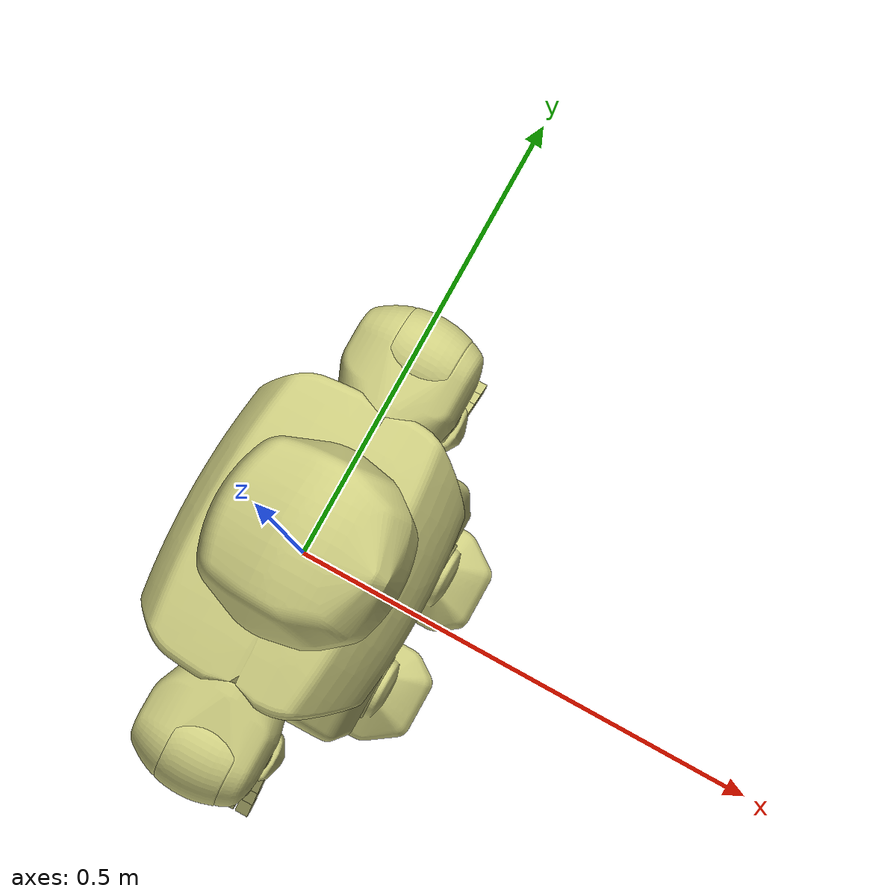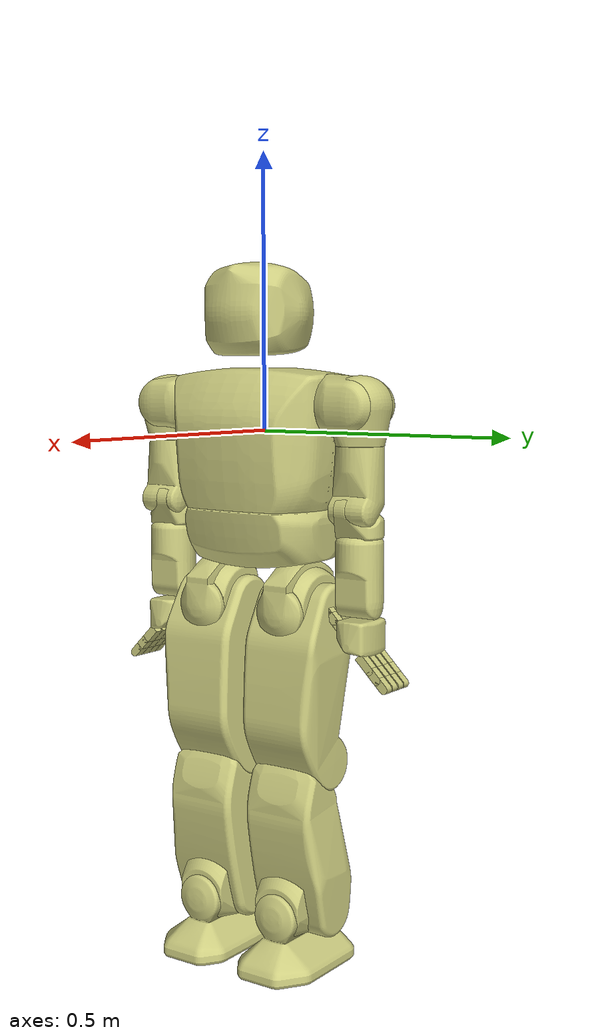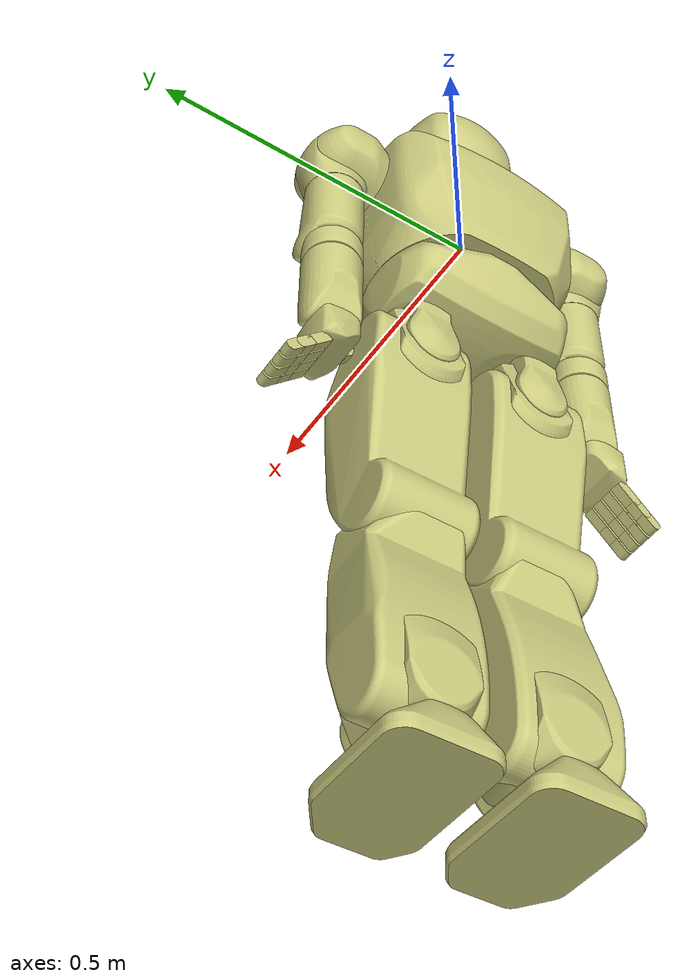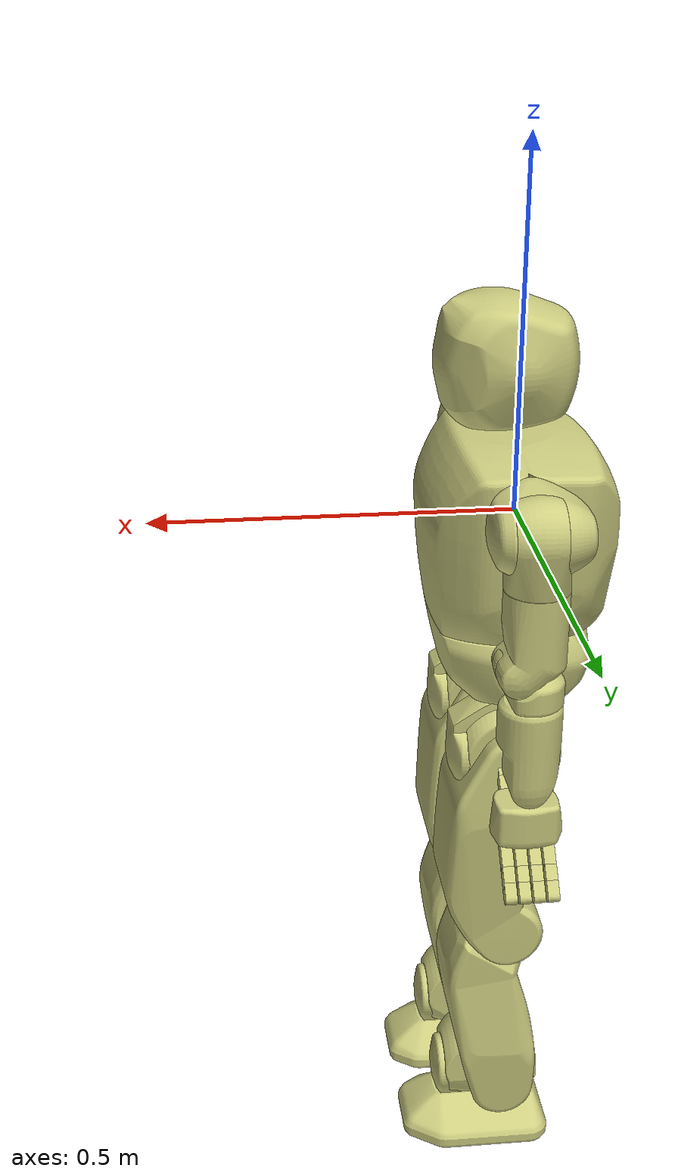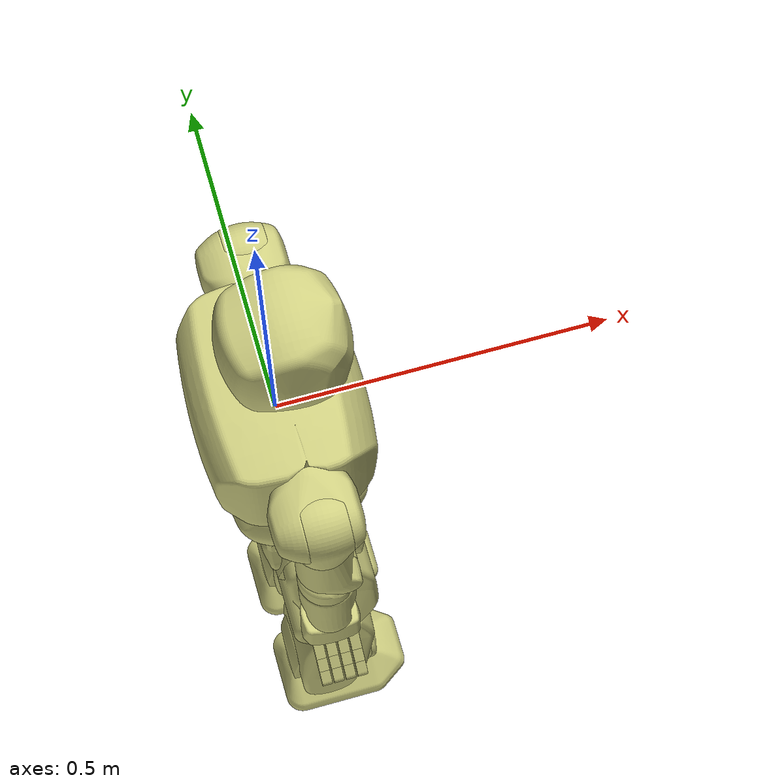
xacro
<?xml version="1.0"?>
<robot name="huboplus" xmlns:xacro="http://www.ros.org/wiki/xacro">
<xacro:property name="path" value="package://wpi_drc_sim/descriptions/huboplus/dae/" />
<xacro:property name="effort" value="10.0" />
<xacro:property name="lower" value="-3.14" />
<xacro:property name="upper" value="3.14" />
<xacro:property name="velocity" value="1.0" />
<link name="Body_Torso">
<inertial>
<mass value="7.50334" />
<inertia ixx="0.102019" ixy="2.45462e-05" ixz="0.00713022" iyy="0.0832724" iyz="-0.00131733" izz="0.086493" />
<origin xyz="0 0 0" />
</inertial>
<visual>
<geometry>
<mesh filename="${path}Body_Torso_vis.dae"/>
</geometry>
<material name="random">
<color rgba="0.800000 0.800000 0.500000 1"/>
</material>
</visual>
<collision>
<geometry>
<mesh filename="${path}Body_Torso_col.dae"/>
</geometry>
</collision>
</link>
<link name="Body_HNR">
</link>
<link name="Body_HNP">
<inertial>
<mass value="0.374251" />
<inertia ixx="0.00164033" ixy="-1.08171e-07" ixz="-9.53978e-05" iyy="0.00153943" iyz="1.25376e-06" izz="0.00190393" />
<origin xyz="0.0106886 -3.00864e-05 0.032123" />
</inertial>
<visual>
<geometry>
<mesh filename="${path}Body_HNP_vis.dae"/>
</geometry>
<material name="random">
<color rgba="0.800000 0.800000 0.500000 1"/>
</material>
</visual>
<collision>
<geometry>
<mesh filename="${path}Body_HNP_col.dae"/>
</geometry>
</collision>
</link>
<link name="Body_LSP">
<inertial>
<mass value="0.646655" />
<inertia ixx="0.000893731" ixy="-0.000156484" ixz="4.98007e-07" iyy="0.00093016" iyz="1.57095e-07" izz="0.00124323" />
<origin xyz="0.0167207 0.0570407 9.91873e-06" />
</inertial>
<visual>
<geometry>
<mesh filename="${path}Body_LSP_vis.dae"/>
</geometry>
<material name="random">
<color rgba="0.800000 0.800000 0.500000 1"/>
</material>
</visual>
<collision>
<geometry>
<mesh filename="${path}Body_LSP_col.dae"/>
</geometry>
</collision>
</link>
<link name="Body_LSR">
<inertial>
<mass value="0.413368" />
<inertia ixx="0.000269283" ixy="4.52571e-07" ixz="3.23662e-06" iyy="0.00037679" iyz="9.93935e-07" izz="0.000360355" />
<origin xyz="-0.036208 -8.31243e-05 -0.00126685" />
</inertial>
<visual>
<geometry>
<mesh filename="${path}Body_LSR_vis.dae"/>
</geometry>
<material name="random">
<color rgba="0.800000 0.800000 0.500000 1"/>
</material>
</visual>
<collision>
<geometry>
<mesh filename="${path}Body_LSR_col.dae"/>
</geometry>
</collision>
</link>
<link name="Body_LSY">
<inertial>
<mass value="1.15461" />
<inertia ixx="0.00365479" ixy="2.05436e-06" ixz="0.000418448" iyy="0.00364731" iyz="-3.09648e-05" izz="0.00060633" />
<origin xyz="0.00456121 3.10576e-05 -0.0907824" />
</inertial>
<visual>
<geometry>
<mesh filename="${path}Body_LSY_vis.dae"/>
</geometry>
<material name="random">
<color rgba="0.800000 0.800000 0.500000 1"/>
</material>
</visual>
<collision>
<geometry>
<mesh filename="${path}Body_LSY_col.dae"/>
</geometry>
</collision>
</link>
<link name="Body_LEP">
<inertial>
<mass value="0.44094" />
<inertia ixx="0.0005027" ixy="3.64587e-06" ixz="-1.41388e-05" iyy="0.00049415" iyz="7.65528e-06" izz="0.000131786" />
<origin xyz="-0.0217349 0.0178314 -0.0610873" />
</inertial>
<visual>
<geometry>
<mesh filename="${path}Body_LEP_vis.dae"/>
</geometry>
<material name="random">
<color rgba="0.800000 0.800000 0.500000 1"/>
</material>
</visual>
<collision>
<geometry>
<mesh filename="${path}Body_LEP_col.dae"/>
</geometry>
</collision>
</link>
<link name="Body_LWY">
<inertial>
<mass value="0.537738" />
<inertia ixx="0.00063457" ixy="-4.62486e-07" ixz="6.20682e-06" iyy="0.000563918" iyz="3.54044e-05" izz="0.000305422" />
<origin xyz="-0.00122019 0.000635233 -0.0238043" />
</inertial>
<visual>
<geometry>
<mesh filename="${path}Body_LWY_vis.dae"/>
</geometry>
<material name="random">
<color rgba="0.800000 0.800000 0.500000 1"/>
</material>
</visual>
<collision>
<geometry>
<mesh filename="${path}Body_LWY_col.dae"/>
</geometry>
</collision>
</link>
<link name="Body_LWP">
<inertial>
<mass value="0.164393" />
<inertia ixx="9.74327e-05" ixy="-5.22155e-07" ixz="-1.17317e-06" iyy="0.000144494" iyz="9.4927e-06" izz="0.000122681" />
<origin xyz="-0.000258199 0.011442 -0.0461472" />
</inertial>
<visual>
<geometry>
<mesh filename="${path}Body_LWP_vis.dae"/>
</geometry>
<material name="random">
<color rgba="0.800000 0.800000 0.500000 1"/>
</material>
</visual>
<collision>
<geometry>
<mesh filename="${path}Body_LWP_col.dae"/>
</geometry>
</collision>
</link>
<link name="leftThumbProximal">
<inertial>
<mass value="0.096" />
<inertia ixx="2.304e-06" ixy="0" ixz="0" iyy="8.96e-06" iyz="6.85949e-15" izz="9.216e-06" />
<origin xyz="0.024 0 0" />
</inertial>
<visual>
<geometry>
<mesh filename="${path}leftThumbProximal_vis.dae"/>
</geometry>
<material name="random">
<color rgba="0.800000 0.800000 0.500000 1"/>
</material>
</visual>
<collision>
<geometry>
<mesh filename="${path}leftThumbProximal_vis.dae"/>
</geometry>
</collision>
</link>
<link name="leftThumbMedial">
<inertial>
<mass value="0.048" />
<inertia ixx="1.152e-06" ixy="0" ixz="0" iyy="2.59e-06" iyz="3.42975e-15" izz="2.718e-06" />
<origin xyz="0.0165 0 0" />
</inertial>
<visual>
<geometry>
<mesh filename="${path}leftThumbMedial_vis.dae"/>
</geometry>
<material name="random">
<color rgba="0.800000 0.800000 0.500000 1"/>
</material>
</visual>
<collision>
<geometry>
<mesh filename="${path}leftThumbMedial_vis.dae"/>
</geometry>
</collision>
</link>
<link name="leftThumbDistal">
<inertial>
<mass value="0.08" />
<inertia ixx="1.92e-06" ixy="0" ixz="0" iyy="3.82667e-06" iyz="5.71624e-15" izz="4.04e-06" />
<origin xyz="0.015 0 0" />
</inertial>
<visual>
<geometry>
<mesh filename="${path}leftThumbDistal_vis.dae"/>
</geometry>
<material name="random">
<color rgba="0.800000 0.800000 0.500000 1"/>
</material>
</visual>
<collision>
<geometry>
<mesh filename="${path}leftThumbDistal_vis.dae"/>
</geometry>
</collision>
</link>
<link name="leftPinkyProximal">
<inertial>
<mass value="0.096" />
<inertia ixx="2.304e-06" ixy="0" ixz="0" iyy="8.96e-06" iyz="6.85949e-15" izz="9.216e-06" />
<origin xyz="0.024 0 0" />
</inertial>
<visual>
<geometry>
<mesh filename="${path}leftPinkyProximal_vis.dae"/>
</geometry>
<material name="random">
<color rgba="0.800000 0.800000 0.500000 1"/>
</material>
</visual>
<collision>
<geometry>
<mesh filename="${path}leftPinkyProximal_vis.dae"/>
</geometry>
</collision>
</link>
<link name="leftPinkyMedial">
<inertial>
<mass value="0.048" />
<inertia ixx="1.152e-06" ixy="0" ixz="0" iyy="2.59e-06" iyz="3.42975e-15" izz="2.718e-06" />
<origin xyz="0.0165 0 0" />
</inertial>
<visual>
<geometry>
<mesh filename="${path}leftPinkyMedial_vis.dae"/>
</geometry>
<material name="random">
<color rgba="0.800000 0.800000 0.500000 1"/>
</material>
</visual>
<collision>
<geometry>
<mesh filename="${path}leftPinkyMedial_vis.dae"/>
</geometry>
</collision>
</link>
<link name="leftPinkyDistal">
<inertial>
<mass value="0.08" />
<inertia ixx="1.92e-06" ixy="0" ixz="0" iyy="3.82667e-06" iyz="5.71624e-15" izz="4.04e-06" />
<origin xyz="0.015 0 0" />
</inertial>
<visual>
<geometry>
<mesh filename="${path}leftPinkyDistal_vis.dae"/>
</geometry>
<material name="random">
<color rgba="0.800000 0.800000 0.500000 1"/>
</material>
</visual>
<collision>
<geometry>
<mesh filename="${path}leftPinkyDistal_vis.dae"/>
</geometry>
</collision>
</link>
<link name="leftRingProximal">
<inertial>
<mass value="0.096" />
<inertia ixx="2.304e-06" ixy="0" ixz="0" iyy="8.96e-06" iyz="6.85949e-15" izz="9.216e-06" />
<origin xyz="0.024 0 0" />
</inertial>
<visual>
<geometry>
<mesh filename="${path}leftRingProximal_vis.dae"/>
</geometry>
<material name="random">
<color rgba="0.800000 0.800000 0.500000 1"/>
</material>
</visual>
<collision>
<geometry>
<mesh filename="${path}leftRingProximal_vis.dae"/>
</geometry>
</collision>
</link>
<link name="leftRingMedial">
<inertial>
<mass value="0.048" />
<inertia ixx="1.152e-06" ixy="0" ixz="0" iyy="2.59e-06" iyz="3.42975e-15" izz="2.718e-06" />
<origin xyz="0.0165 0 0" />
</inertial>
<visual>
<geometry>
<mesh filename="${path}leftRingMedial_vis.dae"/>
</geometry>
<material name="random">
<color rgba="0.800000 0.800000 0.500000 1"/>
</material>
</visual>
<collision>
<geometry>
<mesh filename="${path}leftRingMedial_vis.dae"/>
</geometry>
</collision>
</link>
<link name="leftRingDistal">
<inertial>
<mass value="0.08" />
<inertia ixx="1.92e-06" ixy="0" ixz="0" iyy="3.82667e-06" iyz="5.71624e-15" izz="4.04e-06" />
<origin xyz="0.015 0 0" />
</inertial>
<visual>
<geometry>
<mesh filename="${path}leftRingDistal_vis.dae"/>
</geometry>
<material name="random">
<color rgba="0.800000 0.800000 0.500000 1"/>
</material>
</visual>
<collision>
<geometry>
<mesh filename="${path}leftRingDistal_vis.dae"/>
</geometry>
</collision>
</link>
<link name="leftMiddleProximal">
<inertial>
<mass value="0.096" />
<inertia ixx="2.304e-06" ixy="0" ixz="0" iyy="8.96e-06" iyz="6.85949e-15" izz="9.216e-06" />
<origin xyz="0.024 0 0" />
</inertial>
<visual>
<geometry>
<mesh filename="${path}leftMiddleProximal_vis.dae"/>
</geometry>
<material name="random">
<color rgba="0.800000 0.800000 0.500000 1"/>
</material>
</visual>
<collision>
<geometry>
<mesh filename="${path}leftMiddleProximal_vis.dae"/>
</geometry>
</collision>
</link>
<link name="leftMiddleMedial">
<inertial>
<mass value="0.048" />
<inertia ixx="1.152e-06" ixy="0" ixz="0" iyy="2.59e-06" iyz="3.42975e-15" izz="2.718e-06" />
<origin xyz="0.0165 0 0" />
</inertial>
<visual>
<geometry>
<mesh filename="${path}leftMiddleMedial_vis.dae"/>
</geometry>
<material name="random">
<color rgba="0.800000 0.800000 0.500000 1"/>
</material>
</visual>
<collision>
<geometry>
<mesh filename="${path}leftMiddleMedial_vis.dae"/>
</geometry>
</collision>
</link>
<link name="leftMiddleDistal">
<inertial>
<mass value="0.08" />
<inertia ixx="1.92e-06" ixy="0" ixz="0" iyy="3.82667e-06" iyz="5.71624e-15" izz="4.04e-06" />
<origin xyz="0.015 0 0" />
</inertial>
<visual>
<geometry>
<mesh filename="${path}leftMiddleDistal_vis.dae"/>
</geometry>
<material name="random">
<color rgba="0.800000 0.800000 0.500000 1"/>
</material>
</visual>
<collision>
<geometry>
<mesh filename="${path}leftMiddleDistal_vis.dae"/>
</geometry>
</collision>
</link>
<link name="leftIndexProximal">
<inertial>
<mass value="0.096" />
<inertia ixx="2.304e-06" ixy="0" ixz="0" iyy="8.96e-06" iyz="6.85949e-15" izz="9.216e-06" />
<origin xyz="0.024 0 0" />
</inertial>
<visual>
<geometry>
<mesh filename="${path}leftIndexProximal_vis.dae"/>
</geometry>
<material name="random">
<color rgba="0.800000 0.800000 0.500000 1"/>
</material>
</visual>
<collision>
<geometry>
<mesh filename="${path}leftIndexProximal_vis.dae"/>
</geometry>
</collision>
</link>
<link name="leftIndexMedial">
<inertial>
<mass value="0.048" />
<inertia ixx="1.152e-06" ixy="0" ixz="0" iyy="2.59e-06" iyz="3.42975e-15" izz="2.718e-06" />
<origin xyz="0.0165 0 0" />
</inertial>
<visual>
<geometry>
<mesh filename="${path}leftIndexMedial_vis.dae"/>
</geometry>
<material name="random">
<color rgba="0.800000 0.800000 0.500000 1"/>
</material>
</visual>
<collision>
<geometry>
<mesh filename="${path}leftIndexMedial_vis.dae"/>
</geometry>
</collision>
</link>
<link name="leftIndexDistal">
<inertial>
<mass value="0.08" />
<inertia ixx="1.92e-06" ixy="0" ixz="0" iyy="3.82667e-06" iyz="5.71624e-15" izz="4.04e-06" />
<origin xyz="0.015 0 0" />
</inertial>
<visual>
<geometry>
<mesh filename="${path}leftIndexDistal_vis.dae"/>
</geometry>
<material name="random">
<color rgba="0.800000 0.800000 0.500000 1"/>
</material>
</visual>
<collision>
<geometry>
<mesh filename="${path}leftIndexDistal_vis.dae"/>
</geometry>
</collision>
</link>
<link name="Body_RSP">
<inertial>
<mass value="0.646655" />
<inertia ixx="0.000893731" ixy="0.000156484" ixz="4.98007e-07" iyy="0.00093016" iyz="-1.57095e-07" izz="0.00124323" />
<origin xyz="0.0167207 -0.0570407 9.91873e-06" />
</inertial>
<visual>
<geometry>
<mesh filename="${path}Body_RSP_vis.dae"/>
</geometry>
<material name="random">
<color rgba="0.800000 0.800000 0.500000 1"/>
</material>
</visual>
<collision>
<geometry>
<mesh filename="${path}Body_RSP_col.dae"/>
</geometry>
</collision>
</link>
<link name="Body_RSR">
<inertial>
<mass value="0.413368" />
<inertia ixx="0.000269283" ixy="-4.52571e-07" ixz="3.23662e-06" iyy="0.00037679" iyz="-9.93935e-07" izz="0.000360355" />
<origin xyz="-0.036208 8.31243e-05 -0.00126685" />
</inertial>
<visual>
<geometry>
<mesh filename="${path}Body_RSR_vis.dae"/>
</geometry>
<material name="random">
<color rgba="0.800000 0.800000 0.500000 1"/>
</material>
</visual>
<collision>
<geometry>
<mesh filename="${path}Body_RSR_col.dae"/>
</geometry>
</collision>
</link>
<link name="Body_RSY">
<inertial>
<mass value="1.15461" />
<inertia ixx="0.00365479" ixy="-2.05436e-06" ixz="0.000418448" iyy="0.00364731" iyz="3.09648e-05" izz="0.00060633" />
<origin xyz="0.00456121 -3.10576e-05 -0.0907824" />
</inertial>
<visual>
<geometry>
<mesh filename="${path}Body_RSY_vis.dae"/>
</geometry>
<material name="random">
<color rgba="0.800000 0.800000 0.500000 1"/>
</material>
</visual>
<collision>
<geometry>
<mesh filename="${path}Body_RSY_col.dae"/>
</geometry>
</collision>
</link>
<link name="Body_REP">
<inertial>
<mass value="0.44094" />
<inertia ixx="0.0005027" ixy="-3.64587e-06" ixz="-1.41388e-05" iyy="0.00049415" iyz="-7.65528e-06" izz="0.000131786" />
<origin xyz="-0.0217349 -0.0178314 -0.0610873" />
</inertial>
<visual>
<geometry>
<mesh filename="${path}Body_REP_vis.dae"/>
</geometry>
<material name="random">
<color rgba="0.800000 0.800000 0.500000 1"/>
</material>
</visual>
<collision>
<geometry>
<mesh filename="${path}Body_REP_col.dae"/>
</geometry>
</collision>
</link>
<link name="Body_RWY">
<inertial>
<mass value="0.537738" />
<inertia ixx="0.00063457" ixy="4.62486e-07" ixz="6.20682e-06" iyy="0.000563918" iyz="-3.54044e-05" izz="0.000305422" />
<origin xyz="-0.00122019 -0.000635233 -0.0238043" />
</inertial>
<visual>
<geometry>
<mesh filename="${path}Body_RWY_vis.dae"/>
</geometry>
<material name="random">
<color rgba="0.800000 0.800000 0.500000 1"/>
</material>
</visual>
<collision>
<geometry>
<mesh filename="${path}Body_RWY_col.dae"/>
</geometry>
</collision>
</link>
<link name="Body_RWP">
<inertial>
<mass value="0.164393" />
<inertia ixx="9.74327e-05" ixy="5.22155e-07" ixz="-1.17317e-06" iyy="0.000144494" iyz="-9.4927e-06" izz="0.000122681" />
<origin xyz="-0.000258199 -0.011442 -0.0461472" />
</inertial>
<visual>
<geometry>
<mesh filename="${path}Body_RWP_vis.dae"/>
</geometry>
<material name="random">
<color rgba="0.800000 0.800000 0.500000 1"/>
</material>
</visual>
<collision>
<geometry>
<mesh filename="${path}Body_RWP_col.dae"/>
</geometry>
</collision>
</link>
<link name="rightThumbProximal">
<inertial>
<mass value="0.096" />
<inertia ixx="2.304e-06" ixy="0" ixz="0" iyy="8.96e-06" iyz="6.85949e-15" izz="9.216e-06" />
<origin xyz="0.024 0 0" />
</inertial>
<visual>
<geometry>
<mesh filename="${path}rightThumbProximal_vis.dae"/>
</geometry>
<material name="random">
<color rgba="0.800000 0.800000 0.500000 1"/>
</material>
</visual>
<collision>
<geometry>
<mesh filename="${path}rightThumbProximal_vis.dae"/>
</geometry>
</collision>
</link>
<link name="rightThumbMedial">
<inertial>
<mass value="0.048" />
<inertia ixx="1.152e-06" ixy="0" ixz="0" iyy="2.59e-06" iyz="3.42975e-15" izz="2.718e-06" />
<origin xyz="0.0165 0 0" />
</inertial>
<visual>
<geometry>
<mesh filename="${path}rightThumbMedial_vis.dae"/>
</geometry>
<material name="random">
<color rgba="0.800000 0.800000 0.500000 1"/>
</material>
</visual>
<collision>
<geometry>
<mesh filename="${path}rightThumbMedial_vis.dae"/>
</geometry>
</collision>
</link>
<link name="rightThumbDistal">
<inertial>
<mass value="0.08" />
<inertia ixx="1.92e-06" ixy="0" ixz="0" iyy="3.82667e-06" iyz="5.71624e-15" izz="4.04e-06" />
<origin xyz="0.015 0 0" />
</inertial>
<visual>
<geometry>
<mesh filename="${path}rightThumbDistal_vis.dae"/>
</geometry>
<material name="random">
<color rgba="0.800000 0.800000 0.500000 1"/>
</material>
</visual>
<collision>
<geometry>
<mesh filename="${path}rightThumbDistal_vis.dae"/>
</geometry>
</collision>
</link>
<link name="rightPinkyProximal">
<inertial>
<mass value="0.096" />
<inertia ixx="2.304e-06" ixy="0" ixz="0" iyy="8.96e-06" iyz="6.85949e-15" izz="9.216e-06" />
<origin xyz="0.024 0 0" />
</inertial>
<visual>
<geometry>
<mesh filename="${path}rightPinkyProximal_vis.dae"/>
</geometry>
<material name="random">
<color rgba="0.800000 0.800000 0.500000 1"/>
</material>
</visual>
<collision>
<geometry>
<mesh filename="${path}rightPinkyProximal_vis.dae"/>
</geometry>
</collision>
</link>
<link name="rightPinkyMedial">
<inertial>
<mass value="0.048" />
<inertia ixx="1.152e-06" ixy="0" ixz="0" iyy="2.59e-06" iyz="3.42975e-15" izz="2.718e-06" />
<origin xyz="0.0165 0 0" />
</inertial>
<visual>
<geometry>
<mesh filename="${path}rightPinkyMedial_vis.dae"/>
</geometry>
<material name="random">
<color rgba="0.800000 0.800000 0.500000 1"/>
</material>
</visual>
<collision>
<geometry>
<mesh filename="${path}rightPinkyMedial_vis.dae"/>
</geometry>
</collision>
</link>
<link name="rightPinkyDistal">
<inertial>
<mass value="0.08" />
<inertia ixx="1.92e-06" ixy="0" ixz="0" iyy="3.82667e-06" iyz="5.71624e-15" izz="4.04e-06" />
<origin xyz="0.015 0 0" />
</inertial>
<visual>
<geometry>
<mesh filename="${path}rightPinkyDistal_vis.dae"/>
</geometry>
<material name="random">
<color rgba="0.800000 0.800000 0.500000 1"/>
</material>
</visual>
<collision>
<geometry>
<mesh filename="${path}rightPinkyDistal_vis.dae"/>
</geometry>
</collision>
</link>
<link name="rightRingProximal">
<inertial>
<mass value="0.096" />
<inertia ixx="2.304e-06" ixy="0" ixz="0" iyy="8.96e-06" iyz="6.85949e-15" izz="9.216e-06" />
<origin xyz="0.024 0 0" />
</inertial>
<visual>
<geometry>
<mesh filename="${path}rightRingProximal_vis.dae"/>
</geometry>
<material name="random">
<color rgba="0.800000 0.800000 0.500000 1"/>
</material>
</visual>
<collision>
<geometry>
<mesh filename="${path}rightRingProximal_vis.dae"/>
</geometry>
</collision>
</link>
<link name="rightRingMedial">
<inertial>
<mass value="0.048" />
<inertia ixx="1.152e-06" ixy="0" ixz="0" iyy="2.59e-06" iyz="3.42975e-15" izz="2.718e-06" />
<origin xyz="0.0165 0 0" />
</inertial>
<visual>
<geometry>
<mesh filename="${path}rightRingMedial_vis.dae"/>
</geometry>
<material name="random">
<color rgba="0.800000 0.800000 0.500000 1"/>
</material>
</visual>
<collision>
<geometry>
<mesh filename="${path}rightRingMedial_vis.dae"/>
</geometry>
</collision>
</link>
<link name="rightRingDistal">
<inertial>
<mass value="0.08" />
<inertia ixx="1.92e-06" ixy="0" ixz="0" iyy="3.82667e-06" iyz="5.71624e-15" izz="4.04e-06" />
<origin xyz="0.015 0 0" />
</inertial>
<visual>
<geometry>
<mesh filename="${path}rightRingDistal_vis.dae"/>
</geometry>
<material name="random">
<color rgba="0.800000 0.800000 0.500000 1"/>
</material>
</visual>
<collision>
<geometry>
<mesh filename="${path}rightRingDistal_vis.dae"/>
</geometry>
</collision>
</link>
<link name="rightMiddleProximal">
<inertial>
<mass value="0.096" />
<inertia ixx="2.304e-06" ixy="0" ixz="0" iyy="8.96e-06" iyz="6.85949e-15" izz="9.216e-06" />
<origin xyz="0.024 0 0" />
</inertial>
<visual>
<geometry>
<mesh filename="${path}rightMiddleProximal_vis.dae"/>
</geometry>
<material name="random">
<color rgba="0.800000 0.800000 0.500000 1"/>
</material>
</visual>
<collision>
<geometry>
<mesh filename="${path}rightMiddleProximal_vis.dae"/>
</geometry>
</collision>
</link>
<link name="rightMiddleMedial">
<inertial>
<mass value="0.048" />
<inertia ixx="1.152e-06" ixy="0" ixz="0" iyy="2.59e-06" iyz="3.42975e-15" izz="2.718e-06" />
<origin xyz="0.0165 0 0" />
</inertial>
<visual>
<geometry>
<mesh filename="${path}rightMiddleMedial_vis.dae"/>
</geometry>
<material name="random">
<color rgba="0.800000 0.800000 0.500000 1"/>
</material>
</visual>
<collision>
<geometry>
<mesh filename="${path}rightMiddleMedial_vis.dae"/>
</geometry>
</collision>
</link>
<link name="rightMiddleDistal">
<inertial>
<mass value="0.08" />
<inertia ixx="1.92e-06" ixy="0" ixz="0" iyy="3.82667e-06" iyz="5.71624e-15" izz="4.04e-06" />
<origin xyz="0.015 0 0" />
</inertial>
<visual>
<geometry>
<mesh filename="${path}rightMiddleDistal_vis.dae"/>
</geometry>
<material name="random">
<color rgba="0.800000 0.800000 0.500000 1"/>
</material>
</visual>
<collision>
<geometry>
<mesh filename="${path}rightMiddleDistal_vis.dae"/>
</geometry>
</collision>
</link>
<link name="rightIndexProximal">
<inertial>
<mass value="0.096" />
<inertia ixx="2.304e-06" ixy="0" ixz="0" iyy="8.96e-06" iyz="6.85949e-15" izz="9.216e-06" />
<origin xyz="0.024 0 0" />
</inertial>
<visual>
<geometry>
<mesh filename="${path}rightIndexProximal_vis.dae"/>
</geometry>
<material name="random">
<color rgba="0.800000 0.800000 0.500000 1"/>
</material>
</visual>
<collision>
<geometry>
<mesh filename="${path}rightIndexProximal_vis.dae"/>
</geometry>
</collision>
</link>
<link name="rightIndexMedial">
<inertial>
<mass value="0.048" />
<inertia ixx="1.152e-06" ixy="0" ixz="0" iyy="2.59e-06" iyz="3.42975e-15" izz="2.718e-06" />
<origin xyz="0.0165 0 0" />
</inertial>
<visual>
<geometry>
<mesh filename="${path}rightIndexMedial_vis.dae"/>
</geometry>
<material name="random">
<color rgba="0.800000 0.800000 0.500000 1"/>
</material>
</visual>
<collision>
<geometry>
<mesh filename="${path}rightIndexMedial_vis.dae"/>
</geometry>
</collision>
</link>
<link name="rightIndexDistal">
<inertial>
<mass value="0.08" />
<inertia ixx="1.92e-06" ixy="0" ixz="0" iyy="3.82667e-06" iyz="5.71624e-15" izz="4.04e-06" />
<origin xyz="0.015 0 0" />
</inertial>
<visual>
<geometry>
<mesh filename="${path}rightIndexDistal_vis.dae"/>
</geometry>
<material name="random">
<color rgba="0.800000 0.800000 0.500000 1"/>
</material>
</visual>
<collision>
<geometry>
<mesh filename="${path}rightIndexDistal_vis.dae"/>
</geometry>
</collision>
</link>
<link name="Body_Hip">
<inertial>
<mass value="3.41719" />
<inertia ixx="0.0180349" ixy="3.17531e-05" ixz="-0.000513489" iyy="0.00912382" iyz="-6.90617e-05" izz="0.0220514" />
<origin xyz="-0.0138504 7.80652e-06 -0.0354613" />
</inertial>
<visual>
<geometry>
<mesh filename="${path}Body_Hip_vis.dae"/>
</geometry>
<material name="random">
<color rgba="0.800000 0.800000 0.500000 1"/>
</material>
</visual>
<collision>
<geometry>
<mesh filename="${path}Body_Hip_col.dae"/>
</geometry>
</collision>
</link>
<link name="Body_LHY">
<inertial>
<mass value="0.826125" />
<inertia ixx="0.00151818" ixy="2.13586e-06" ixz="0.000434128" iyy="0.00286333" iyz="-1.57525e-07" izz="0.00211437" />
<origin xyz="0.0347065 3.748e-05 -0.0726153" />
</inertial>
<visual>
<geometry>
<mesh filename="${path}Body_LHY_vis.dae"/>
</geometry>
<material name="random">
<color rgba="0.800000 0.800000 0.500000 1"/>
</material>
</visual>
<collision>
<geometry>
<mesh filename="${path}Body_LHY_col.dae"/>
</geometry>
</collision>
</link>
<link name="Body_LHR">
<inertial>
<mass value="1.93266" />
<inertia ixx="0.00403487" ixy="7.9452e-05" ixz="-0.000125343" iyy="0.00332707" iyz="-0.000551964" izz="0.00317173" />
<origin xyz="-0.0497479 0.0125311 -0.0156437" />
</inertial>
<visual>
<geometry>
<mesh filename="${path}Body_LHR_vis.dae"/>
</geometry>
<material name="random">
<color rgba="0.800000 0.800000 0.500000 1"/>
</material>
</visual>
<collision>
<geometry>
<mesh filename="${path}Body_LHR_col.dae"/>
</geometry>
</collision>
</link>
<link name="Body_LHP">
<inertial>
<mass value="2.8201" />
<inertia ixx="0.0295102" ixy="0.000184399" ixz="-0.000370291" iyy="0.0273771" iyz="0.00065658" izz="0.00838035" />
<origin xyz="0.0195049 -0.0595775 -0.175202" />
</inertial>
<visual>
<geometry>
<mesh filename="${path}Body_LHP_vis.dae"/>
</geometry>
<material name="random">
<color rgba="0.800000 0.800000 0.500000 1"/>
</material>
</visual>
<collision>
<geometry>
<mesh filename="${path}Body_LHP_col.dae"/>
</geometry>
</collision>
</link>
<link name="Body_LKP">
<inertial>
<mass value="1.80912" />
<inertia ixx="0.0232156" ixy="0.000251648" ixz="-0.00129343" iyy="0.0208342" iyz="0.00278068" izz="0.0059204" />
<origin xyz="0.0128254 -0.00727567 -0.171431" />
</inertial>
<visual>
<geometry>
<mesh filename="${path}Body_LKP_vis.dae"/>
</geometry>
<material name="random">
<color rgba="0.800000 0.800000 0.500000 1"/>
</material>
</visual>
<collision>
<geometry>
<mesh filename="${path}Body_LKP_col.dae"/>
</geometry>
</collision>
</link>
<link name="Body_LAP">
<inertial>
<mass value="1.63501" />
<inertia ixx="0.00231659" ixy="1.87402e-05" ixz="0.000369899" iyy="0.00330411" iyz="6.38153e-05" izz="0.00279495" />
<origin xyz="0.0198702 -0.0459693 0.0115069" />
</inertial>
<visual>
<geometry>
<mesh filename="${path}Body_LAP_vis.dae"/>
</geometry>
<material name="random">
<color rgba="0.800000 0.800000 0.500000 1"/>
</material>
</visual>
<collision>
<geometry>
<mesh filename="${path}Body_LAP_col.dae"/>
</geometry>
</collision>
</link>
<link name="Body_LAR">
<inertial>
<mass value="1.20318" />
<inertia ixx="0.00295183" ixy="3.23211e-05" ixz="0.000141769" iyy="0.00524792" iyz="5.95404e-05" izz="0.00516817" />
<origin xyz="-0.0515094 0.00216398 -0.0693881" />
</inertial>
<visual>
<geometry>
<mesh filename="${path}Body_LAR_vis.dae"/>
</geometry>
<material name="random">
<color rgba="0.800000 0.800000 0.500000 1"/>
</material>
</visual>
<collision>
<geometry>
<mesh filename="${path}Body_LAR_col.dae"/>
</geometry>
</collision>
</link>
<link name="Body_RHY">
<inertial>
<mass value="0.826125" />
<inertia ixx="0.00151818" ixy="-2.13586e-06" ixz="0.000434128" iyy="0.00286333" iyz="1.57525e-07" izz="0.00211437" />
<origin xyz="0.0347065 -3.748e-05 -0.0726153" />
</inertial>
<visual>
<geometry>
<mesh filename="${path}Body_RHY_vis.dae"/>
</geometry>
<material name="random">
<color rgba="0.800000 0.800000 0.500000 1"/>
</material>
</visual>
<collision>
<geometry>
<mesh filename="${path}Body_RHY_col.dae"/>
</geometry>
</collision>
</link>
<link name="Body_RHR">
<inertial>
<mass value="1.93266" />
<inertia ixx="0.00403487" ixy="-7.9452e-05" ixz="-0.000125343" iyy="0.00332707" iyz="0.000551964" izz="0.00317173" />
<origin xyz="-0.0497479 -0.0125311 -0.0156437" />
</inertial>
<visual>
<geometry>
<mesh filename="${path}Body_RHR_vis.dae"/>
</geometry>
<material name="random">
<color rgba="0.800000 0.800000 0.500000 1"/>
</material>
</visual>
<collision>
<geometry>
<mesh filename="${path}Body_RHR_col.dae"/>
</geometry>
</collision>
</link>
<link name="Body_RHP">
<inertial>
<mass value="2.8201" />
<inertia ixx="0.0295102" ixy="-0.000184399" ixz="-0.000370291" iyy="0.0273771" iyz="-0.00065658" izz="0.00838035" />
<origin xyz="0.0195049 0.0595775 -0.175202" />
</inertial>
<visual>
<geometry>
<mesh filename="${path}Body_RHP_vis.dae"/>
</geometry>
<material name="random">
<color rgba="0.800000 0.800000 0.500000 1"/>
</material>
</visual>
<collision>
<geometry>
<mesh filename="${path}Body_RHP_col.dae"/>
</geometry>
</collision>
</link>
<link name="Body_RKP">
<inertial>
<mass value="1.80912" />
<inertia ixx="0.0232156" ixy="-0.000251648" ixz="-0.00129343" iyy="0.0208342" iyz="-0.00278068" izz="0.0059204" />
<origin xyz="0.0128254 0.00727567 -0.171431" />
</inertial>
<visual>
<geometry>
<mesh filename="${path}Body_RKP_vis.dae"/>
</geometry>
<material name="random">
<color rgba="0.800000 0.800000 0.500000 1"/>
</material>
</visual>
<collision>
<geometry>
<mesh filename="${path}Body_RKP_col.dae"/>
</geometry>
</collision>
</link>
<link name="Body_RAP">
<inertial>
<mass value="1.63501" />
<inertia ixx="0.00231659" ixy="-1.87402e-05" ixz="0.000369899" iyy="0.00330411" iyz="-6.38153e-05" izz="0.00279495" />
<origin xyz="0.0198702 0.0459693 0.0115069" />
</inertial>
<visual>
<geometry>
<mesh filename="${path}Body_RAP_vis.dae"/>
</geometry>
<material name="random">
<color rgba="0.800000 0.800000 0.500000 1"/>
</material>
</visual>
<collision>
<geometry>
<mesh filename="${path}Body_RAP_col.dae"/>
</geometry>
</collision>
</link>
<link name="Body_RAR">
<inertial>
<mass value="1.20318" />
<inertia ixx="0.00295183" ixy="-3.23211e-05" ixz="0.000141769" iyy="0.00524792" iyz="-5.95404e-05" izz="0.00516817" />
<origin xyz="-0.0515094 -0.00216398 -0.0693881" />
</inertial>
<visual>
<geometry>
<mesh filename="${path}Body_RAR_vis.dae"/>
</geometry>
<material name="random">
<color rgba="0.800000 0.800000 0.500000 1"/>
</material>
</visual>
<collision>
<geometry>
<mesh filename="${path}Body_RAR_col.dae"/>
</geometry>
</collision>
</link>
<joint name="HNR" type="revolute">
<origin xyz="0.0122581 0.0024526 0.196935" rpy="0 -0 0" />
<parent link="Body_Torso" />
<child link="Body_HNR" />
<axis xyz="1 0 0" />
<limit effort="${effort}" lower="-0.523599" upper="0.523599" velocity="${velocity}" />
</joint>
<joint name="HNP" type="revolute">
<origin xyz="0 0 0" rpy="0 -0 0" />
<parent link="Body_HNR" />
<child link="Body_HNP" />
<axis xyz="0 1 0" />
<limit effort="${effort}" lower="-0.523599" upper="0.523599" velocity="${velocity}" />
</joint>
<joint name="LSP" type="revolute">
<origin xyz="0.0122581 0.143973 0.0486356" rpy="0 -0 0" />
<parent link="Body_Torso" />
<child link="Body_LSP" />
<axis xyz="0 1 0" />
<limit effort="${effort}" lower="-3.14158" upper="3.14158" velocity="${velocity}" />
</joint>
<joint name="LSR" type="revolute">
<origin xyz="0.0269 0.072 0" rpy="0 -0 0" />
<parent link="Body_LSP" />
<child link="Body_LSR" />
<axis xyz="1 0 0" />
<limit effort="${effort}" lower="-1.5708" upper="1.5708" velocity="${velocity}" />
</joint>
<joint name="LSY" type="revolute">
<origin xyz="-0.0269 -0.000166249 -0.0245" rpy="0 -0 0" />
<parent link="Body_LSR" />
<child link="Body_LSY" />
<axis xyz="0 0 1" />
<limit effort="${effort}" lower="-3.14158" upper="3.14158" velocity="${velocity}" />
</joint>
<joint name="LEP" type="revolute">
<origin xyz="0.0219936 -0.018 -0.157505" rpy="0 -0 0" />
<parent link="Body_LSY" />
<child link="Body_LEP" />
<axis xyz="0 1 0" />
<limit effort="${effort}" lower="-2.49582" upper="0.0698132" velocity="${velocity}" />
</joint>
<joint name="LWY" type="revolute">
<origin xyz="-0.0219906 0.018 -0.111408" rpy="0 -0 0" />
<parent link="Body_LEP" />
<child link="Body_LWY" />
<axis xyz="0 0 1" />
<limit effort="${effort}" lower="-3.14158" upper="3.14158" velocity="${velocity}" />
</joint>
<joint name="LWP" type="revolute">
<origin xyz="1.72973e-06 -0.00872953 -0.05255" rpy="0 -0 0" />
<parent link="Body_LWY" />
<child link="Body_LWP" />
<axis xyz="0 1 0" />
<limit effort="${effort}" lower="-1.64061" upper="1.01229" velocity="${velocity}" />
</joint>
<joint name="leftThumbKnuckle1" type="revolute">
<origin xyz="0.0208959 0.00192069 -0.060952" rpy="1.5708 -0.785398 -1.5708" />
<parent link="Body_LWP" />
<child link="leftThumbProximal" />
<axis xyz="0 0 1" />
<limit effort="${effort}" lower="${lower}" upper="${upper}" velocity="${velocity}" />
</joint>
<joint name="Knuckle29" type="revolute">
<origin xyz="0.032 0 0" rpy="0 -0 0" />
<parent link="leftThumbProximal" />
<child link="leftThumbMedial" />
<axis xyz="0 0 -1" />
<limit effort="${effort}" lower="${lower}" upper="${upper}" velocity="${velocity}" />
</joint>
<joint name="Knuckle310" type="revolute">
<origin xyz="0.022 0 0" rpy="0 -0 0" />
<parent link="leftThumbMedial" />
<child link="leftThumbDistal" />
<axis xyz="0 0 -1" />
<limit effort="${effort}" lower="${lower}" upper="${upper}" velocity="${velocity}" />
</joint>
<joint name="leftPinkyKnuckle1" type="revolute">
<origin xyz="-0.0281041 0.0298617 -0.088883" rpy="1.5708 0.785398 1.5708" />
<parent link="Body_LWP" />
<child link="leftPinkyProximal" />
<axis xyz="0 0 1" />
<limit effort="${effort}" lower="${lower}" upper="${upper}" velocity="${velocity}" />
</joint>
<joint name="Knuckle212" type="revolute">
<origin xyz="0.032 0 0" rpy="0 -0 0" />
<parent link="leftPinkyProximal" />
<child link="leftPinkyMedial" />
<axis xyz="0 0 -1" />
<limit effort="${effort}" lower="${lower}" upper="${upper}" velocity="${velocity}" />
</joint>
<joint name="Knuckle313" type="revolute">
<origin xyz="0.022 0 0" rpy="0 -0 0" />
<parent link="leftPinkyMedial" />
<child link="leftPinkyDistal" />
<axis xyz="0 0 -1" />
<limit effort="${effort}" lower="${lower}" upper="${upper}" velocity="${velocity}" />
</joint>
<joint name="leftRingKnuckle1" type="revolute">
<origin xyz="-0.00910415 0.0298617 -0.088883" rpy="1.5708 0.785398 1.5708" />
<parent link="Body_LWP" />
<child link="leftRingProximal" />
<axis xyz="0 0 1" />
<limit effort="${effort}" lower="${lower}" upper="${upper}" velocity="${velocity}" />
</joint>
<joint name="Knuckle215" type="revolute">
<origin xyz="0.032 0 0" rpy="0 -0 0" />
<parent link="leftRingProximal" />
<child link="leftRingMedial" />
<axis xyz="0 0 -1" />
<limit effort="${effort}" lower="${lower}" upper="${upper}" velocity="${velocity}" />
</joint>
<joint name="Knuckle316" type="revolute">
<origin xyz="0.022 0 0" rpy="0 -0 0" />
<parent link="leftRingMedial" />
<child link="leftRingDistal" />
<axis xyz="0 0 -1" />
<limit effort="${effort}" lower="${lower}" upper="${upper}" velocity="${velocity}" />
</joint>
<joint name="leftMiddleKnuckle1" type="revolute">
<origin xyz="0.00993585 0.0298617 -0.088883" rpy="1.5708 0.785398 1.5708" />
<parent link="Body_LWP" />
<child link="leftMiddleProximal" />
<axis xyz="0 0 1" />
<limit effort="${effort}" lower="${lower}" upper="${upper}" velocity="${velocity}" />
</joint>
<joint name="Knuckle218" type="revolute">
<origin xyz="0.032 0 0" rpy="0 -0 0" />
<parent link="leftMiddleProximal" />
<child link="leftMiddleMedial" />
<axis xyz="0 0 -1" />
<limit effort="${effort}" lower="${lower}" upper="${upper}" velocity="${velocity}" />
</joint>
<joint name="Knuckle319" type="revolute">
<origin xyz="0.022 0 0" rpy="0 -0 0" />
<parent link="leftMiddleMedial" />
<child link="leftMiddleDistal" />
<axis xyz="0 0 -1" />
<limit effort="${effort}" lower="${lower}" upper="${upper}" velocity="${velocity}" />
</joint>
<joint name="leftIndexKnuckle1" type="revolute">
<origin xyz="0.0289159 0.0298617 -0.088883" rpy="1.5708 0.785398 1.5708" />
<parent link="Body_LWP" />
<child link="leftIndexProximal" />
<axis xyz="0 0 1" />
<limit effort="${effort}" lower="${lower}" upper="${upper}" velocity="${velocity}" />
</joint>
<joint name="Knuckle221" type="revolute">
<origin xyz="0.032 0 0" rpy="0 -0 0" />
<parent link="leftIndexProximal" />
<child link="leftIndexMedial" />
<axis xyz="0 0 -1" />
<limit effort="${effort}" lower="${lower}" upper="${upper}" velocity="${velocity}" />
</joint>
<joint name="Knuckle322" type="revolute">
<origin xyz="0.022 0 0" rpy="0 -0 0" />
<parent link="leftIndexMedial" />
<child link="leftIndexDistal" />
<axis xyz="0 0 -1" />
<limit effort="${effort}" lower="${lower}" upper="${upper}" velocity="${velocity}" />
</joint>
<joint name="RSP" type="revolute">
<origin xyz="0.0122581 -0.139027 0.0486356" rpy="0 -0 0" />
<parent link="Body_Torso" />
<child link="Body_RSP" />
<axis xyz="0 1 0" />
<limit effort="${effort}" lower="-3.14158" upper="3.14158" velocity="${velocity}" />
</joint>
<joint name="RSR" type="revolute">
<origin xyz="0.0269 -0.072 0" rpy="0 -0 0" />
<parent link="Body_RSP" />
<child link="Body_RSR" />
<axis xyz="1 0 0" />
<limit effort="${effort}" lower="-1.5708" upper="1.5708" velocity="${velocity}" />
</joint>
<joint name="RSY" type="revolute">
<origin xyz="-0.0269 0 -0.0245" rpy="0 -0 0" />
<parent link="Body_RSR" />
<child link="Body_RSY" />
<axis xyz="0 0 1" />
<limit effort="${effort}" lower="-3.14158" upper="3.14158" velocity="${velocity}" />
</joint>
<joint name="REP" type="revolute">
<origin xyz="0.0219936 0.018 -0.157505" rpy="0 -0 0" />
<parent link="Body_RSY" />
<child link="Body_REP" />
<axis xyz="0 1 0" />
<limit effort="${effort}" lower="-2.49582" upper="0.0698132" velocity="${velocity}" />
</joint>
<joint name="RWY" type="revolute">
<origin xyz="-0.0219906 -0.018 -0.111408" rpy="0 -0 0" />
<parent link="Body_REP" />
<child link="Body_RWY" />
<axis xyz="0 0 1" />
<limit effort="${effort}" lower="-3.14158" upper="3.14158" velocity="${velocity}" />
</joint>
<joint name="RWP" type="revolute">
<origin xyz="1.72973e-06 0.01 -0.05255" rpy="0 -0 0" />
<parent link="Body_RWY" />
<child link="Body_RWP" />
<axis xyz="0 1 0" />
<limit effort="${effort}" lower="-1.64061" upper="1.01229" velocity="${velocity}" />
</joint>
<joint name="rightThumbKnuckle1" type="revolute">
<origin xyz="0.0208959 -0.00192069 -0.060952" rpy="1.5708 -0.785398 1.5708" />
<parent link="Body_RWP" />
<child link="rightThumbProximal" />
<axis xyz="0 0 1" />
<limit effort="${effort}" lower="${lower}" upper="${upper}" velocity="${velocity}" />
</joint>
<joint name="Knuckle230" type="revolute">
<origin xyz="0.032 0 0" rpy="0 -0 0" />
<parent link="rightThumbProximal" />
<child link="rightThumbMedial" />
<axis xyz="0 0 -1" />
<limit effort="${effort}" lower="${lower}" upper="${upper}" velocity="${velocity}" />
</joint>
<joint name="Knuckle331" type="revolute">
<origin xyz="0.022 0 0" rpy="0 -0 0" />
<parent link="rightThumbMedial" />
<child link="rightThumbDistal" />
<axis xyz="0 0 -1" />
<limit effort="${effort}" lower="${lower}" upper="${upper}" velocity="${velocity}" />
</joint>
<joint name="rightPinkyKnuckle1" type="revolute">
<origin xyz="-0.0281041 -0.0298617 -0.088883" rpy="1.5708 0.785398 -1.5708" />
<parent link="Body_RWP" />
<child link="rightPinkyProximal" />
<axis xyz="0 0 1" />
<limit effort="${effort}" lower="${lower}" upper="${upper}" velocity="${velocity}" />
</joint>
<joint name="Knuckle233" type="revolute">
<origin xyz="0.032 0 0" rpy="0 -0 0" />
<parent link="rightPinkyProximal" />
<child link="rightPinkyMedial" />
<axis xyz="0 0 -1" />
<limit effort="${effort}" lower="${lower}" upper="${upper}" velocity="${velocity}" />
</joint>
<joint name="Knuckle334" type="revolute">
<origin xyz="0.022 0 0" rpy="0 -0 0" />
<parent link="rightPinkyMedial" />
<child link="rightPinkyDistal" />
<axis xyz="0 0 -1" />
<limit effort="${effort}" lower="${lower}" upper="${upper}" velocity="${velocity}" />
</joint>
<joint name="rightRingKnuckle1" type="revolute">
<origin xyz="-0.00910415 -0.0298617 -0.088883" rpy="1.5708 0.785398 -1.5708" />
<parent link="Body_RWP" />
<child link="rightRingProximal" />
<axis xyz="0 0 1" />
<limit effort="${effort}" lower="${lower}" upper="${upper}" velocity="${velocity}" />
</joint>
<joint name="Knuckle236" type="revolute">
<origin xyz="0.032 0 0" rpy="0 -0 0" />
<parent link="rightRingProximal" />
<child link="rightRingMedial" />
<axis xyz="0 0 -1" />
<limit effort="${effort}" lower="${lower}" upper="${upper}" velocity="${velocity}" />
</joint>
<joint name="Knuckle337" type="revolute">
<origin xyz="0.022 0 0" rpy="0 -0 0" />
<parent link="rightRingMedial" />
<child link="rightRingDistal" />
<axis xyz="0 0 -1" />
<limit effort="${effort}" lower="${lower}" upper="${upper}" velocity="${velocity}" />
</joint>
<joint name="rightMiddleKnuckle1" type="revolute">
<origin xyz="0.00993585 -0.0298617 -0.088883" rpy="1.5708 0.785398 -1.5708" />
<parent link="Body_RWP" />
<child link="rightMiddleProximal" />
<axis xyz="0 0 1" />
<limit effort="${effort}" lower="${lower}" upper="${upper}" velocity="${velocity}" />
</joint>
<joint name="Knuckle239" type="revolute">
<origin xyz="0.032 0 0" rpy="0 -0 0" />
<parent link="rightMiddleProximal" />
<child link="rightMiddleMedial" />
<axis xyz="0 0 -1" />
<limit effort="${effort}" lower="${lower}" upper="${upper}" velocity="${velocity}" />
</joint>
<joint name="Knuckle340" type="revolute">
<origin xyz="0.022 0 0" rpy="0 -0 0" />
<parent link="rightMiddleMedial" />
<child link="rightMiddleDistal" />
<axis xyz="0 0 -1" />
<limit effort="${effort}" lower="${lower}" upper="${upper}" velocity="${velocity}" />
</joint>
<joint name="rightIndexKnuckle1" type="revolute">
<origin xyz="0.0289159 -0.0298617 -0.088883" rpy="1.5708 0.785398 -1.5708" />
<parent link="Body_RWP" />
<child link="rightIndexProximal" />
<axis xyz="0 0 1" />
<limit effort="${effort}" lower="${lower}" upper="${upper}" velocity="${velocity}" />
</joint>
<joint name="Knuckle2" type="revolute">
<origin xyz="0.032 0 0" rpy="0 -0 0" />
<parent link="rightIndexProximal" />
<child link="rightIndexMedial" />
<axis xyz="0 0 -1" />
<limit effort="${effort}" lower="${lower}" upper="${upper}" velocity="${velocity}" />
</joint>
<joint name="Knuckle3" type="revolute">
<origin xyz="0.022 0 0" rpy="0 -0 0" />
<parent link="rightIndexMedial" />
<child link="rightIndexDistal" />
<axis xyz="0 0 -1" />
<limit effort="${effort}" lower="${lower}" upper="${upper}" velocity="${velocity}" />
</joint>
<joint name="HPY" type="revolute">
<origin xyz="0.0122662 0.00245974 -0.15262" rpy="0 -0 0" />
<parent link="Body_Torso" />
<child link="Body_Hip" />
<axis xyz="0 0 1" />
<limit effort="${effort}" lower="-3.14158" upper="3.14158" velocity="${velocity}" />
</joint>
<joint name="LHY" type="revolute">
<origin xyz="0.000125136 0.0885155 -0.0764689" rpy="0 -0 0" />
<parent link="Body_Hip" />
<child link="Body_LHY" />
<axis xyz="0 0 1" />
<limit effort="${effort}" lower="-1.5708" upper="1.5708" velocity="${velocity}" />
</joint>
<joint name="LHR" type="revolute">
<origin xyz="0.0520001 1.50498e-06 -0.091004" rpy="0 -0 0" />
<parent link="Body_LHY" />
<child link="Body_LHR" />
<axis xyz="1 0 0" />
<limit effort="${effort}" lower="-0.488692" upper="0.488692" velocity="${velocity}" />
</joint>
<joint name="LHP" type="revolute">
<origin xyz="-0.0529074 0.0655748 9.99159e-05" rpy="0 -0 0" />
<parent link="Body_LHR" />
<child link="Body_LHP" />
<axis xyz="0 1 0" />
<limit effort="${effort}" lower="-1.48353" upper="1.6057" velocity="${velocity}" />
</joint>
<joint name="LKP" type="revolute">
<origin xyz="0.000766364 -0.0445011 -0.280007" rpy="0 -0 0" />
<parent link="Body_LHP" />
<child link="Body_LKP" />
<axis xyz="0 1 0" />
<limit effort="${effort}" lower="-0.0698132" upper="2.60054" velocity="${velocity}" />
</joint>
<joint name="LAP" type="revolute">
<origin xyz="7.20248e-06 0.0247555 -0.279942" rpy="0 -0 0" />
<parent link="Body_LKP" />
<child link="Body_LAP" />
<axis xyz="0 1 0" />
<limit effort="${effort}" lower="-1.29154" upper="1.69297" velocity="${velocity}" />
</joint>
<joint name="LAR" type="revolute">
<origin xyz="0.0711787 -0.0466006 -1.04e-10" rpy="0 -0 0" />
<parent link="Body_LAP" />
<child link="Body_LAR" />
<axis xyz="1 0 0" />
<limit effort="${effort}" lower="-0.191986" upper="0.191986" velocity="${velocity}" />
</joint>
<joint name="RHY" type="revolute">
<origin xyz="0.000125136 -0.0884999 -0.0764689" rpy="0 -0 0" />
<parent link="Body_Hip" />
<child link="Body_RHY" />
<axis xyz="0 0 1" />
<limit effort="${effort}" lower="-1.5708" upper="1.5708" velocity="${velocity}" />
</joint>
<joint name="RHR" type="revolute">
<origin xyz="0.0520001 7.3455e-05 -0.091004" rpy="0 -0 0" />
<parent link="Body_RHY" />
<child link="Body_RHR" />
<axis xyz="1 0 0" />
<limit effort="${effort}" lower="-0.488692" upper="0.488692" velocity="${velocity}" />
</joint>
<joint name="RHP" type="revolute">
<origin xyz="-0.0529074 -0.0655748 9.99159e-05" rpy="0 -0 0" />
<parent link="Body_RHR" />
<child link="Body_RHP" />
<axis xyz="0 1 0" />
<limit effort="${effort}" lower="-1.48353" upper="1.6057" velocity="${velocity}" />
</joint>
<joint name="RKP" type="revolute">
<origin xyz="0.000766364 0.0445011 -0.280007" rpy="0 -0 0" />
<parent link="Body_RHP" />
<child link="Body_RKP" />
<axis xyz="0 1 0" />
<limit effort="${effort}" lower="-0.0698132" upper="2.60054" velocity="${velocity}" />
</joint>
<joint name="RAP" type="revolute">
<origin xyz="7.20248e-06 -0.0247555 -0.279942" rpy="0 -0 0" />
<parent link="Body_RKP" />
<child link="Body_RAP" />
<axis xyz="0 1 0" />
<limit effort="${effort}" lower="-1.29154" upper="1.69297" velocity="${velocity}" />
</joint>
<joint name="RAR" type="revolute">
<origin xyz="0.0711787 0.0466006 -1.04e-10" rpy="0 -0 0" />
<parent link="Body_RAP" />
<child link="Body_RAR" />
<axis xyz="1 0 0" />
<limit effort="${effort}" lower="-0.191986" upper="0.191986" velocity="${velocity}" />
</joint>
</robot>
